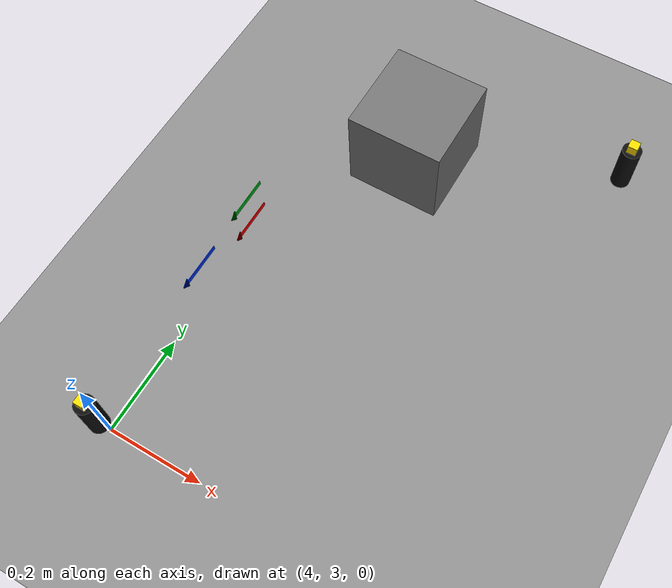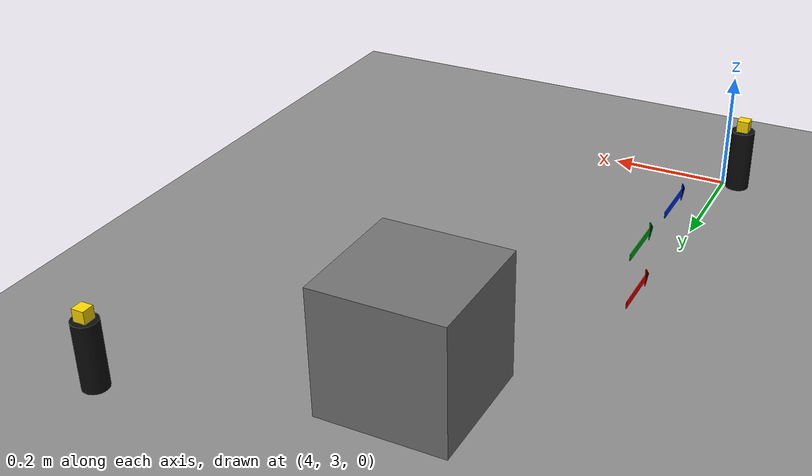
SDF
<sdf version="1.9">
 <world name="ros2_world">
  <model name="ground_plane">
   <static>true</static>
   <link name="link">
    <collision name="collision">
     <geometry><plane><normal>0 0 1</normal><size>30 30</size></plane></geometry>
    </collision>
    <visual name="visual">
     <geometry><plane><normal>0 0 1</normal><size>30 30</size></plane></geometry>
     <material><ambient>0.55 0.55 0.55 1</ambient><diffuse>0.55 0.55 0.55 1</diffuse></material>
    </visual>
   </link>
  </model>
  <model name="flechas">
   <static>true</static>
   <link name="flecha_3">
    <pose>3.99875 3.32 0.115 0 0 -1.5708</pose>
    <visual name="p0">
     <pose>-0.007 0 0 0 0 0</pose>
     <geometry><box><size>0.085 0.0015 0.01</size></box></geometry>
     <material><ambient>0 0.2 1 1</ambient><diffuse>0 0.2 1 1</diffuse></material>
    </visual>
    <visual name="p1">
     <pose>0.03578 0 0 0 0 0</pose>
     <geometry><box><size>0.00056 0.0015 0.029</size></box></geometry>
     <material><ambient>0 0.2 1 1</ambient><diffuse>0 0.2 1 1</diffuse></material>
    </visual>
    <visual name="p2">
     <pose>0.03634 0 0 0 0 0</pose>
     <geometry><box><size>0.00056 0.0015 0.02784</size></box></geometry>
     <material><ambient>0 0.2 1 1</ambient><diffuse>0 0.2 1 1</diffuse></material>
    </visual>
    <visual name="p3">
     <pose>0.0369 0 0 0 0 0</pose>
     <geometry><box><size>0.00056 0.0015 0.02668</size></box></geometry>
     <material><ambient>0 0.2 1 1</ambient><diffuse>0 0.2 1 1</diffuse></material>
    </visual>
    <visual name="p4">
     <pose>0.03746 0 0 0 0 0</pose>
     <geometry><box><size>0.00056 0.0015 0.02552</size></box></geometry>
     <material><ambient>0 0.2 1 1</ambient><diffuse>0 0.2 1 1</diffuse></material>
    </visual>
    <visual name="p5">
     <pose>0.03802 0 0 0 0 0</pose>
     <geometry><box><size>0.00056 0.0015 0.02436</size></box></geometry>
     <material><ambient>0 0.2 1 1</ambient><diffuse>0 0.2 1 1</diffuse></material>
    </visual>
    <visual name="p6">
     <pose>0.03858 0 0 0 0 0</pose>
     <geometry><box><size>0.00056 0.0015 0.0232</size></box></geometry>
     <material><ambient>0 0.2 1 1</ambient><diffuse>0 0.2 1 1</diffuse></material>
    </visual>
    <visual name="p7">
     <pose>0.03914 0 0 0 0 0</pose>
     <geometry><box><size>0.00056 0.0015 0.02204</size></box></geometry>
     <material><ambient>0 0.2 1 1</ambient><diffuse>0 0.2 1 1</diffuse></material>
    </visual>
    <visual name="p8">
     <pose>0.0397 0 0 0 0 0</pose>
     <geometry><box><size>0.00056 0.0015 0.02088</size></box></geometry>
     <material><ambient>0 0.2 1 1</ambient><diffuse>0 0.2 1 1</diffuse></material>
    </visual>
    <visual name="p9">
     <pose>0.04026 0 0 0 0 0</pose>
     <geometry><box><size>0.00056 0.0015 0.01972</size></box></geometry>
     <material><ambient>0 0.2 1 1</ambient><diffuse>0 0.2 1 1</diffuse></material>
    </visual>
    <visual name="p10">
     <pose>0.04082 0 0 0 0 0</pose>
     <geometry><box><size>0.00056 0.0015 0.01856</size></box></geometry>
     <material><ambient>0 0.2 1 1</ambient><diffuse>0 0.2 1 1</diffuse></material>
    </visual>
    <visual name="p11">
     <pose>0.04138 0 0 0 0 0</pose>
     <geometry><box><size>0.00056 0.0015 0.0174</size></box></geometry>
     <material><ambient>0 0.2 1 1</ambient><diffuse>0 0.2 1 1</diffuse></material>
    </visual>
    <visual name="p12">
     <pose>0.04194 0 0 0 0 0</pose>
     <geometry><box><size>0.00056 0.0015 0.01624</size></box></geometry>
     <material><ambient>0 0.2 1 1</ambient><diffuse>0 0.2 1 1</diffuse></material>
    </visual>
    <visual name="p13">
     <pose>0.0425 0 0 0 0 0</pose>
     <geometry><box><size>0.00056 0.0015 0.01508</size></box></geometry>
     <material><ambient>0 0.2 1 1</ambient><diffuse>0 0.2 1 1</diffuse></material>
    </visual>
    <visual name="p14">
     <pose>0.04306 0 0 0 0 0</pose>
     <geometry><box><size>0.00056 0.0015 0.01392</size></box></geometry>
     <material><ambient>0 0.2 1 1</ambient><diffuse>0 0.2 1 1</diffuse></material>
    </visual>
    <visual name="p15">
     <pose>0.04362 0 0 0 0 0</pose>
     <geometry><box><size>0.00056 0.0015 0.01276</size></box></geometry>
     <material><ambient>0 0.2 1 1</ambient><diffuse>0 0.2 1 1</diffuse></material>
    </visual>
    <visual name="p16">
     <pose>0.04418 0 0 0 0 0</pose>
     <geometry><box><size>0.00056 0.0015 0.0116</size></box></geometry>
     <material><ambient>0 0.2 1 1</ambient><diffuse>0 0.2 1 1</diffuse></material>
    </visual>
    <visual name="p17">
     <pose>0.04474 0 0 0 0 0</pose>
     <geometry><box><size>0.00056 0.0015 0.01044</size></box></geometry>
     <material><ambient>0 0.2 1 1</ambient><diffuse>0 0.2 1 1</diffuse></material>
    </visual>
    <visual name="p18">
     <pose>0.0453 0 0 0 0 0</pose>
     <geometry><box><size>0.00056 0.0015 0.00928</size></box></geometry>
     <material><ambient>0 0.2 1 1</ambient><diffuse>0 0.2 1 1</diffuse></material>
    </visual>
    <visual name="p19">
     <pose>0.04586 0 0 0 0 0</pose>
     <geometry><box><size>0.00056 0.0015 0.00812</size></box></geometry>
     <material><ambient>0 0.2 1 1</ambient><diffuse>0 0.2 1 1</diffuse></material>
    </visual>
    <visual name="p20">
     <pose>0.04642 0 0 0 0 0</pose>
     <geometry><box><size>0.00056 0.0015 0.00696</size></box></geometry>
     <material><ambient>0 0.2 1 1</ambient><diffuse>0 0.2 1 1</diffuse></material>
    </visual>
    <visual name="p21">
     <pose>0.04698 0 0 0 0 0</pose>
     <geometry><box><size>0.00056 0.0015 0.0058</size></box></geometry>
     <material><ambient>0 0.2 1 1</ambient><diffuse>0 0.2 1 1</diffuse></material>
    </visual>
    <visual name="p22">
     <pose>0.04754 0 0 0 0 0</pose>
     <geometry><box><size>0.00056 0.0015 0.00464</size></box></geometry>
     <material><ambient>0 0.2 1 1</ambient><diffuse>0 0.2 1 1</diffuse></material>
    </visual>
    <visual name="p23">
     <pose>0.0481 0 0 0 0 0</pose>
     <geometry><box><size>0.00056 0.0015 0.00348</size></box></geometry>
     <material><ambient>0 0.2 1 1</ambient><diffuse>0 0.2 1 1</diffuse></material>
    </visual>
    <visual name="p24">
     <pose>0.04866 0 0 0 0 0</pose>
     <geometry><box><size>0.00056 0.0015 0.00232</size></box></geometry>
     <material><ambient>0 0.2 1 1</ambient><diffuse>0 0.2 1 1</diffuse></material>
    </visual>
    <visual name="p25">
     <pose>0.04922 0 0 0 0 0</pose>
     <geometry><box><size>0.00056 0.0015 0.00116</size></box></geometry>
     <material><ambient>0 0.2 1 1</ambient><diffuse>0 0.2 1 1</diffuse></material>
    </visual>
   </link>
   <link name="flecha_4">
    <pose>3.99875 3.48 0.125 0 0 -1.5708</pose>
    <visual name="p0">
     <pose>-0.007 0 0 0 0 0</pose>
     <geometry><box><size>0.085 0.0015 0.01</size></box></geometry>
     <material><ambient>0 0.7 0.1 1</ambient><diffuse>0 0.7 0.1 1</diffuse></material>
    </visual>
    <visual name="p1">
     <pose>0.03578 0 0 0 0 0</pose>
     <geometry><box><size>0.00056 0.0015 0.029</size></box></geometry>
     <material><ambient>0 0.7 0.1 1</ambient><diffuse>0 0.7 0.1 1</diffuse></material>
    </visual>
    <visual name="p2">
     <pose>0.03634 0 0 0 0 0</pose>
     <geometry><box><size>0.00056 0.0015 0.02784</size></box></geometry>
     <material><ambient>0 0.7 0.1 1</ambient><diffuse>0 0.7 0.1 1</diffuse></material>
    </visual>
    <visual name="p3">
     <pose>0.0369 0 0 0 0 0</pose>
     <geometry><box><size>0.00056 0.0015 0.02668</size></box></geometry>
     <material><ambient>0 0.7 0.1 1</ambient><diffuse>0 0.7 0.1 1</diffuse></material>
    </visual>
    <visual name="p4">
     <pose>0.03746 0 0 0 0 0</pose>
     <geometry><box><size>0.00056 0.0015 0.02552</size></box></geometry>
     <material><ambient>0 0.7 0.1 1</ambient><diffuse>0 0.7 0.1 1</diffuse></material>
    </visual>
    <visual name="p5">
     <pose>0.03802 0 0 0 0 0</pose>
     <geometry><box><size>0.00056 0.0015 0.02436</size></box></geometry>
     <material><ambient>0 0.7 0.1 1</ambient><diffuse>0 0.7 0.1 1</diffuse></material>
    </visual>
    <visual name="p6">
     <pose>0.03858 0 0 0 0 0</pose>
     <geometry><box><size>0.00056 0.0015 0.0232</size></box></geometry>
     <material><ambient>0 0.7 0.1 1</ambient><diffuse>0 0.7 0.1 1</diffuse></material>
    </visual>
    <visual name="p7">
     <pose>0.03914 0 0 0 0 0</pose>
     <geometry><box><size>0.00056 0.0015 0.02204</size></box></geometry>
     <material><ambient>0 0.7 0.1 1</ambient><diffuse>0 0.7 0.1 1</diffuse></material>
    </visual>
    <visual name="p8">
     <pose>0.0397 0 0 0 0 0</pose>
     <geometry><box><size>0.00056 0.0015 0.02088</size></box></geometry>
     <material><ambient>0 0.7 0.1 1</ambient><diffuse>0 0.7 0.1 1</diffuse></material>
    </visual>
    <visual name="p9">
     <pose>0.04026 0 0 0 0 0</pose>
     <geometry><box><size>0.00056 0.0015 0.01972</size></box></geometry>
     <material><ambient>0 0.7 0.1 1</ambient><diffuse>0 0.7 0.1 1</diffuse></material>
    </visual>
    <visual name="p10">
     <pose>0.04082 0 0 0 0 0</pose>
     <geometry><box><size>0.00056 0.0015 0.01856</size></box></geometry>
     <material><ambient>0 0.7 0.1 1</ambient><diffuse>0 0.7 0.1 1</diffuse></material>
    </visual>
    <visual name="p11">
     <pose>0.04138 0 0 0 0 0</pose>
     <geometry><box><size>0.00056 0.0015 0.0174</size></box></geometry>
     <material><ambient>0 0.7 0.1 1</ambient><diffuse>0 0.7 0.1 1</diffuse></material>
    </visual>
    <visual name="p12">
     <pose>0.04194 0 0 0 0 0</pose>
     <geometry><box><size>0.00056 0.0015 0.01624</size></box></geometry>
     <material><ambient>0 0.7 0.1 1</ambient><diffuse>0 0.7 0.1 1</diffuse></material>
    </visual>
    <visual name="p13">
     <pose>0.0425 0 0 0 0 0</pose>
     <geometry><box><size>0.00056 0.0015 0.01508</size></box></geometry>
     <material><ambient>0 0.7 0.1 1</ambient><diffuse>0 0.7 0.1 1</diffuse></material>
    </visual>
    <visual name="p14">
     <pose>0.04306 0 0 0 0 0</pose>
     <geometry><box><size>0.00056 0.0015 0.01392</size></box></geometry>
     <material><ambient>0 0.7 0.1 1</ambient><diffuse>0 0.7 0.1 1</diffuse></material>
    </visual>
    <visual name="p15">
     <pose>0.04362 0 0 0 0 0</pose>
     <geometry><box><size>0.00056 0.0015 0.01276</size></box></geometry>
     <material><ambient>0 0.7 0.1 1</ambient><diffuse>0 0.7 0.1 1</diffuse></material>
    </visual>
    <visual name="p16">
     <pose>0.04418 0 0 0 0 0</pose>
     <geometry><box><size>0.00056 0.0015 0.0116</size></box></geometry>
     <material><ambient>0 0.7 0.1 1</ambient><diffuse>0 0.7 0.1 1</diffuse></material>
    </visual>
    <visual name="p17">
     <pose>0.04474 0 0 0 0 0</pose>
     <geometry><box><size>0.00056 0.0015 0.01044</size></box></geometry>
     <material><ambient>0 0.7 0.1 1</ambient><diffuse>0 0.7 0.1 1</diffuse></material>
    </visual>
    <visual name="p18">
     <pose>0.0453 0 0 0 0 0</pose>
     <geometry><box><size>0.00056 0.0015 0.00928</size></box></geometry>
     <material><ambient>0 0.7 0.1 1</ambient><diffuse>0 0.7 0.1 1</diffuse></material>
    </visual>
    <visual name="p19">
     <pose>0.04586 0 0 0 0 0</pose>
     <geometry><box><size>0.00056 0.0015 0.00812</size></box></geometry>
     <material><ambient>0 0.7 0.1 1</ambient><diffuse>0 0.7 0.1 1</diffuse></material>
    </visual>
    <visual name="p20">
     <pose>0.04642 0 0 0 0 0</pose>
     <geometry><box><size>0.00056 0.0015 0.00696</size></box></geometry>
     <material><ambient>0 0.7 0.1 1</ambient><diffuse>0 0.7 0.1 1</diffuse></material>
    </visual>
    <visual name="p21">
     <pose>0.04698 0 0 0 0 0</pose>
     <geometry><box><size>0.00056 0.0015 0.0058</size></box></geometry>
     <material><ambient>0 0.7 0.1 1</ambient><diffuse>0 0.7 0.1 1</diffuse></material>
    </visual>
    <visual name="p22">
     <pose>0.04754 0 0 0 0 0</pose>
     <geometry><box><size>0.00056 0.0015 0.00464</size></box></geometry>
     <material><ambient>0 0.7 0.1 1</ambient><diffuse>0 0.7 0.1 1</diffuse></material>
    </visual>
    <visual name="p23">
     <pose>0.0481 0 0 0 0 0</pose>
     <geometry><box><size>0.00056 0.0015 0.00348</size></box></geometry>
     <material><ambient>0 0.7 0.1 1</ambient><diffuse>0 0.7 0.1 1</diffuse></material>
    </visual>
    <visual name="p24">
     <pose>0.04866 0 0 0 0 0</pose>
     <geometry><box><size>0.00056 0.0015 0.00232</size></box></geometry>
     <material><ambient>0 0.7 0.1 1</ambient><diffuse>0 0.7 0.1 1</diffuse></material>
    </visual>
    <visual name="p25">
     <pose>0.04922 0 0 0 0 0</pose>
     <geometry><box><size>0.00056 0.0015 0.00116</size></box></geometry>
     <material><ambient>0 0.7 0.1 1</ambient><diffuse>0 0.7 0.1 1</diffuse></material>
    </visual>
   </link>
   <link name="flecha_5">
    <pose>3.99875 3.48 0.045 0 0 -1.5708</pose>
    <visual name="p0">
     <pose>-0.007 0 0 0 0 0</pose>
     <geometry><box><size>0.085 0.0015 0.01</size></box></geometry>
     <material><ambient>1 0 0 1</ambient><diffuse>1 0 0 1</diffuse></material>
    </visual>
    <visual name="p1">
     <pose>0.03578 0 0 0 0 0</pose>
     <geometry><box><size>0.00056 0.0015 0.029</size></box></geometry>
     <material><ambient>1 0 0 1</ambient><diffuse>1 0 0 1</diffuse></material>
    </visual>
    <visual name="p2">
     <pose>0.03634 0 0 0 0 0</pose>
     <geometry><box><size>0.00056 0.0015 0.02784</size></box></geometry>
     <material><ambient>1 0 0 1</ambient><diffuse>1 0 0 1</diffuse></material>
    </visual>
    <visual name="p3">
     <pose>0.0369 0 0 0 0 0</pose>
     <geometry><box><size>0.00056 0.0015 0.02668</size></box></geometry>
     <material><ambient>1 0 0 1</ambient><diffuse>1 0 0 1</diffuse></material>
    </visual>
    <visual name="p4">
     <pose>0.03746 0 0 0 0 0</pose>
     <geometry><box><size>0.00056 0.0015 0.02552</size></box></geometry>
     <material><ambient>1 0 0 1</ambient><diffuse>1 0 0 1</diffuse></material>
    </visual>
    <visual name="p5">
     <pose>0.03802 0 0 0 0 0</pose>
     <geometry><box><size>0.00056 0.0015 0.02436</size></box></geometry>
     <material><ambient>1 0 0 1</ambient><diffuse>1 0 0 1</diffuse></material>
    </visual>
    <visual name="p6">
     <pose>0.03858 0 0 0 0 0</pose>
     <geometry><box><size>0.00056 0.0015 0.0232</size></box></geometry>
     <material><ambient>1 0 0 1</ambient><diffuse>1 0 0 1</diffuse></material>
    </visual>
    <visual name="p7">
     <pose>0.03914 0 0 0 0 0</pose>
     <geometry><box><size>0.00056 0.0015 0.02204</size></box></geometry>
     <material><ambient>1 0 0 1</ambient><diffuse>1 0 0 1</diffuse></material>
    </visual>
    <visual name="p8">
     <pose>0.0397 0 0 0 0 0</pose>
     <geometry><box><size>0.00056 0.0015 0.02088</size></box></geometry>
     <material><ambient>1 0 0 1</ambient><diffuse>1 0 0 1</diffuse></material>
    </visual>
    <visual name="p9">
     <pose>0.04026 0 0 0 0 0</pose>
     <geometry><box><size>0.00056 0.0015 0.01972</size></box></geometry>
     <material><ambient>1 0 0 1</ambient><diffuse>1 0 0 1</diffuse></material>
    </visual>
    <visual name="p10">
     <pose>0.04082 0 0 0 0 0</pose>
     <geometry><box><size>0.00056 0.0015 0.01856</size></box></geometry>
     <material><ambient>1 0 0 1</ambient><diffuse>1 0 0 1</diffuse></material>
    </visual>
    <visual name="p11">
     <pose>0.04138 0 0 0 0 0</pose>
     <geometry><box><size>0.00056 0.0015 0.0174</size></box></geometry>
     <material><ambient>1 0 0 1</ambient><diffuse>1 0 0 1</diffuse></material>
    </visual>
    <visual name="p12">
     <pose>0.04194 0 0 0 0 0</pose>
     <geometry><box><size>0.00056 0.0015 0.01624</size></box></geometry>
     <material><ambient>1 0 0 1</ambient><diffuse>1 0 0 1</diffuse></material>
    </visual>
    <visual name="p13">
     <pose>0.0425 0 0 0 0 0</pose>
     <geometry><box><size>0.00056 0.0015 0.01508</size></box></geometry>
     <material><ambient>1 0 0 1</ambient><diffuse>1 0 0 1</diffuse></material>
    </visual>
    <visual name="p14">
     <pose>0.04306 0 0 0 0 0</pose>
     <geometry><box><size>0.00056 0.0015 0.01392</size></box></geometry>
     <material><ambient>1 0 0 1</ambient><diffuse>1 0 0 1</diffuse></material>
    </visual>
    <visual name="p15">
     <pose>0.04362 0 0 0 0 0</pose>
     <geometry><box><size>0.00056 0.0015 0.01276</size></box></geometry>
     <material><ambient>1 0 0 1</ambient><diffuse>1 0 0 1</diffuse></material>
    </visual>
    <visual name="p16">
     <pose>0.04418 0 0 0 0 0</pose>
     <geometry><box><size>0.00056 0.0015 0.0116</size></box></geometry>
     <material><ambient>1 0 0 1</ambient><diffuse>1 0 0 1</diffuse></material>
    </visual>
    <visual name="p17">
     <pose>0.04474 0 0 0 0 0</pose>
     <geometry><box><size>0.00056 0.0015 0.01044</size></box></geometry>
     <material><ambient>1 0 0 1</ambient><diffuse>1 0 0 1</diffuse></material>
    </visual>
    <visual name="p18">
     <pose>0.0453 0 0 0 0 0</pose>
     <geometry><box><size>0.00056 0.0015 0.00928</size></box></geometry>
     <material><ambient>1 0 0 1</ambient><diffuse>1 0 0 1</diffuse></material>
    </visual>
    <visual name="p19">
     <pose>0.04586 0 0 0 0 0</pose>
     <geometry><box><size>0.00056 0.0015 0.00812</size></box></geometry>
     <material><ambient>1 0 0 1</ambient><diffuse>1 0 0 1</diffuse></material>
    </visual>
    <visual name="p20">
     <pose>0.04642 0 0 0 0 0</pose>
     <geometry><box><size>0.00056 0.0015 0.00696</size></box></geometry>
     <material><ambient>1 0 0 1</ambient><diffuse>1 0 0 1</diffuse></material>
    </visual>
    <visual name="p21">
     <pose>0.04698 0 0 0 0 0</pose>
     <geometry><box><size>0.00056 0.0015 0.0058</size></box></geometry>
     <material><ambient>1 0 0 1</ambient><diffuse>1 0 0 1</diffuse></material>
    </visual>
    <visual name="p22">
     <pose>0.04754 0 0 0 0 0</pose>
     <geometry><box><size>0.00056 0.0015 0.00464</size></box></geometry>
     <material><ambient>1 0 0 1</ambient><diffuse>1 0 0 1</diffuse></material>
    </visual>
    <visual name="p23">
     <pose>0.0481 0 0 0 0 0</pose>
     <geometry><box><size>0.00056 0.0015 0.00348</size></box></geometry>
     <material><ambient>1 0 0 1</ambient><diffuse>1 0 0 1</diffuse></material>
    </visual>
    <visual name="p24">
     <pose>0.04866 0 0 0 0 0</pose>
     <geometry><box><size>0.00056 0.0015 0.00232</size></box></geometry>
     <material><ambient>1 0 0 1</ambient><diffuse>1 0 0 1</diffuse></material>
    </visual>
    <visual name="p25">
     <pose>0.04922 0 0 0 0 0</pose>
     <geometry><box><size>0.00056 0.0015 0.00116</size></box></geometry>
     <material><ambient>1 0 0 1</ambient><diffuse>1 0 0 1</diffuse></material>
    </visual>
   </link>
  </model>
  <model name="soporte_distractor_0">
   <static>true</static>
   <pose>3.975 3 0.05425 0 0 0</pose>
   <link name="link">
    <collision name="colision">
     <geometry><cylinder><radius>0.02</radius><length>0.1085</length></cylinder></geometry>
    </collision>
    <visual name="visual">
     <geometry><cylinder><radius>0.02</radius><length>0.1085</length></cylinder></geometry>
     <material><ambient>0.05 0.05 0.05 1</ambient><diffuse>0.05 0.05 0.05 1</diffuse></material>
    </visual>
   </link>
  </model>
  <model name="distractor_amarillo_0">
   <pose>3.975 3 0.1187 0 0 0</pose>
   <link name="link">
    <inertial>
     <mass>0.0099</mass>
     <inertia>
      <ixx>6.6000e-07</ixx>
      <iyy>6.6000e-07</iyy>
      <izz>6.6000e-07</izz>
      <ixy>0</ixy>
      <ixz>0</ixz>
      <iyz>0</iyz>
     </inertia>
    </inertial>
    <collision name="colision">
     <geometry><box><size>0.02 0.02 0.02</size></box></geometry>
     <surface><friction><ode><mu>1</mu><mu2>1</mu2></ode></friction></surface>
    </collision>
    <visual name="visual">
     <geometry><box><size>0.02 0.02 0.02</size></box></geometry>
     <material><ambient>1 0.85 0 1</ambient><diffuse>1 0.85 0 1</diffuse></material>
    </visual>
   </link>
  </model>
  <model name="soporte_distractor_5">
   <static>true</static>
   <pose>4.6 3.975 0.05425 0 0 0</pose>
   <link name="link">
    <collision name="colision">
     <geometry><cylinder><radius>0.02</radius><length>0.1085</length></cylinder></geometry>
    </collision>
    <visual name="visual">
     <geometry><cylinder><radius>0.02</radius><length>0.1085</length></cylinder></geometry>
     <material><ambient>0.05 0.05 0.05 1</ambient><diffuse>0.05 0.05 0.05 1</diffuse></material>
    </visual>
   </link>
  </model>
  <model name="distractor_amarillo_5">
   <pose>4.6 3.975 0.1187 0 0 0</pose>
   <link name="link">
    <inertial>
     <mass>0.0099</mass>
     <inertia>
      <ixx>6.6000e-07</ixx>
      <iyy>6.6000e-07</iyy>
      <izz>6.6000e-07</izz>
      <ixy>0</ixy>
      <ixz>0</ixz>
      <iyz>0</iyz>
     </inertia>
    </inertial>
    <collision name="colision">
     <geometry><box><size>0.02 0.02 0.02</size></box></geometry>
     <surface><friction><ode><mu>1</mu><mu2>1</mu2></ode></friction></surface>
    </collision>
    <visual name="visual">
     <geometry><box><size>0.02 0.02 0.02</size></box></geometry>
     <material><ambient>1 0.85 0 1</ambient><diffuse>1 0.85 0 1</diffuse></material>
    </visual>
   </link>
  </model>
  <model name="bloque_20cm_6">
   <static>true</static>
   <pose>4.2 3.8 0.1 0 0 0</pose>
   <link name="link">
    <collision name="colision"><geometry><box><size>0.2 0.2 0.2</size></box></geometry></collision>
    <visual name="visual">
     <geometry><box><size>0.2 0.2 0.2</size></box></geometry>
     <material><ambient>0.45 0.45 0.45 1</ambient><diffuse>0.45 0.45 0.45 1</diffuse></material>
    </visual>
   </link>
  </model>
 </world>
</sdf>
